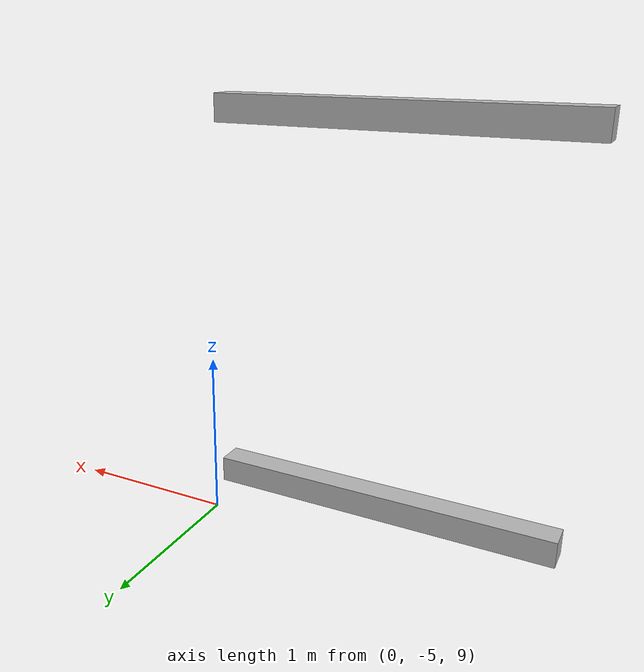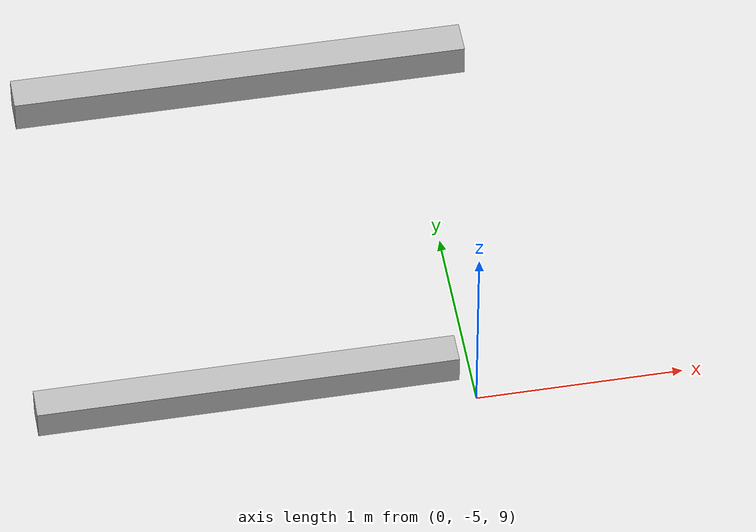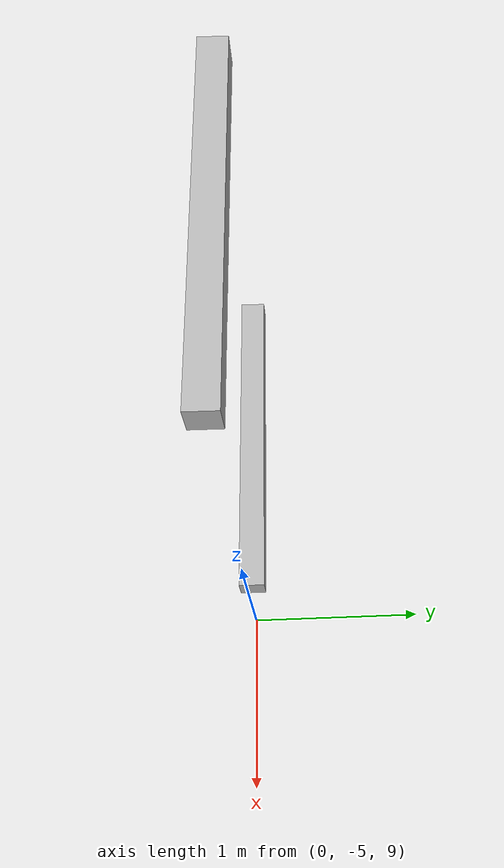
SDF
<sdf version="1.7">
 <world name="default">
  <model name="orthogonal_747_2.000.15_TS">
   <static>1</static>
   <link name="x_link_5_0_2">
    <inertial>
     <mass>1</mass>
     <inertia>
      <ixx>0.166667</ixx>
      <ixy>0</ixy>
      <ixz>0</ixz>
      <iyy>0.166667</iyy>
      <iyz>0</iyz>
      <izz>0.166667</izz>
     </inertia>
    </inertial>
    <pose>5.375 0 11.825 0 -0 0</pose>
    <visual name="visual_0">
     <laser_retro>4418</laser_retro>
     <geometry><box><size>2 1e-06 0.15</size></box></geometry>
     <material>
      <script><name>Gazebo/Grey</name><uri>file://media/materials/scripts/gazebo.material</uri></script>
      <shader type="pixel"><normal_map>__default__</normal_map></shader>
      <ambient>0.678 0.498 0.659 1</ambient>
      <diffuse>0.7 0.7 0.7 1</diffuse>
      <specular>0.01 0.01 0.01 1</specular>
      <emissive>0 0 0 1</emissive>
     </material>
     <pose>0 -0.075 0 0 -0 0</pose>
     <transparency>1</transparency>
    </visual>
    <visual name="visual_1">
     <laser_retro>4419</laser_retro>
     <geometry><box><size>2 1e-06 0.15</size></box></geometry>
     <material>
      <script><name>Gazebo/Grey</name><uri>file://media/materials/scripts/gazebo.material</uri></script>
      <shader type="pixel"><normal_map>__default__</normal_map></shader>
      <ambient>0.447 0.624 0.812 1</ambient>
      <diffuse>0.7 0.7 0.7 1</diffuse>
      <specular>0.01 0.01 0.01 1</specular>
      <emissive>0 0 0 1</emissive>
     </material>
     <pose>0 0.075 0 0 -0 0</pose>
     <transparency>1</transparency>
    </visual>
    <visual name="visual_2">
     <laser_retro>4420</laser_retro>
     <geometry><box><size>2 0.15 1e-06</size></box></geometry>
     <material>
      <script><name>Gazebo/Grey</name><uri>file://media/materials/scripts/gazebo.material</uri></script>
      <shader type="pixel"><normal_map>__default__</normal_map></shader>
      <ambient>0.988 0.686 0.243 1</ambient>
      <diffuse>0.7 0.7 0.7 1</diffuse>
      <specular>0.01 0.01 0.01 1</specular>
      <emissive>0 0 0 1</emissive>
     </material>
     <pose>0 0 -0.075 0 -0 0</pose>
     <transparency>1</transparency>
    </visual>
    <visual name="visual_3">
     <laser_retro>4421</laser_retro>
     <geometry><box><size>1e-06 0.15 0.15</size></box></geometry>
     <material>
      <script><name>Gazebo/Grey</name><uri>file://media/materials/scripts/gazebo.material</uri></script>
      <shader type="pixel"><normal_map>__default__</normal_map></shader>
      <ambient>0.988 0.914 0.31 1</ambient>
      <diffuse>0.7 0.7 0.7 1</diffuse>
      <specular>0.01 0.01 0.01 1</specular>
      <emissive>0 0 0 1</emissive>
     </material>
     <pose>1 0 0 0 -0 0</pose>
     <transparency>1</transparency>
    </visual>
    <visual name="visual_4">
     <laser_retro>4422</laser_retro>
     <geometry><box><size>2 0.15 1e-06</size></box></geometry>
     <material>
      <script><name>Gazebo/Grey</name><uri>file://media/materials/scripts/gazebo.material</uri></script>
      <shader type="pixel"><normal_map>__default__</normal_map></shader>
      <ambient>0.937 0.161 0.161 1</ambient>
      <diffuse>0.7 0.7 0.7 1</diffuse>
      <specular>0.01 0.01 0.01 1</specular>
      <emissive>0 0 0 1</emissive>
     </material>
     <pose>0 0 0.075 0 -0 0</pose>
     <transparency>1</transparency>
    </visual>
    <visual name="visual_5">
     <laser_retro>4423</laser_retro>
     <geometry><box><size>1e-06 0.15 0.15</size></box></geometry>
     <material>
      <script><name>Gazebo/Grey</name><uri>file://media/materials/scripts/gazebo.material</uri></script>
      <shader type="pixel"><normal_map>__default__</normal_map></shader>
      <ambient>0.541 0.886 0.204 1</ambient>
      <diffuse>0.7 0.7 0.7 1</diffuse>
      <specular>0.01 0.01 0.01 1</specular>
      <emissive>0 0 0 1</emissive>
     </material>
     <pose>-1 0 0 0 -0 0</pose>
     <transparency>1</transparency>
    </visual>
    <visual name="visual_texture">
     <geometry><box><size>1.9998 0.149985 0.149985</size></box></geometry>
     <material>
      <script>
       <uri>model://BASE_MODELS/simple_block_v2_textured/materials/scripts</uri>
       <uri>model://BASE_MODELS/simple_block_v2_textured/materials/textures</uri>
       <name>metal</name>
      </script>
     </material>
     <laser_retro>4424</laser_retro>
    </visual>
    <collision name="collision">
     <geometry><box><size>2 0.15 0.15</size></box></geometry>
     <surface>
      <friction>
       <ode><mu>1</mu><mu2>1</mu2><fdir1>0 0 0</fdir1><slip1>0</slip1><slip2>0</slip2></ode>
       <torsional>
        <coefficient>1</coefficient>
        <patch_radius>0</patch_radius>
        <surface_radius>0</surface_radius>
        <use_patch_radius>1</use_patch_radius>
        <ode><slip>0</slip></ode>
       </torsional>
      </friction>
      <bounce><restitution_coefficient>0</restitution_coefficient><threshold>1e+06</threshold></bounce>
      <contact>
       <collide_without_contact>0</collide_without_contact>
       <collide_without_contact_bitmask>1</collide_without_contact_bitmask>
       <collide_bitmask>1</collide_bitmask>
       <ode>
        <soft_cfm>0</soft_cfm>
        <soft_erp>0.2</soft_erp>
        <kp>1e+13</kp>
        <kd>1</kd>
        <max_vel>0.01</max_vel>
        <min_depth>0</min_depth>
       </ode>
       <bullet>
        <split_impulse>1</split_impulse>
        <split_impulse_penetration_threshold>-0.01</split_impulse_penetration_threshold>
        <soft_cfm>0</soft_cfm>
        <soft_erp>0.2</soft_erp>
        <kp>1e+13</kp>
        <kd>1</kd>
       </bullet>
      </contact>
     </surface>
    </collision>
   </link>
   <link name="x_link_6_0_2">
    <inertial>
     <mass>1</mass>
     <inertia>
      <ixx>0.166667</ixx>
      <ixy>0</ixy>
      <ixz>0</ixz>
      <iyy>0.166667</iyy>
      <iyz>0</iyz>
      <izz>0.166667</izz>
     </inertia>
    </inertial>
    <pose>5.375 0 13.975 0 -0 0</pose>
    <visual name="visual_0">
     <laser_retro>5321</laser_retro>
     <geometry><box><size>2 1e-06 0.15</size></box></geometry>
     <material>
      <script><name>Gazebo/Grey</name><uri>file://media/materials/scripts/gazebo.material</uri></script>
      <shader type="pixel"><normal_map>__default__</normal_map></shader>
      <ambient>0.678 0.498 0.659 1</ambient>
      <diffuse>0.7 0.7 0.7 1</diffuse>
      <specular>0.01 0.01 0.01 1</specular>
      <emissive>0 0 0 1</emissive>
     </material>
     <pose>0 -0.075 0 0 -0 0</pose>
     <transparency>1</transparency>
    </visual>
    <visual name="visual_1">
     <laser_retro>5322</laser_retro>
     <geometry><box><size>2 1e-06 0.15</size></box></geometry>
     <material>
      <script><name>Gazebo/Grey</name><uri>file://media/materials/scripts/gazebo.material</uri></script>
      <shader type="pixel"><normal_map>__default__</normal_map></shader>
      <ambient>0.447 0.624 0.812 1</ambient>
      <diffuse>0.7 0.7 0.7 1</diffuse>
      <specular>0.01 0.01 0.01 1</specular>
      <emissive>0 0 0 1</emissive>
     </material>
     <pose>0 0.075 0 0 -0 0</pose>
     <transparency>1</transparency>
    </visual>
    <visual name="visual_2">
     <laser_retro>5323</laser_retro>
     <geometry><box><size>2 0.15 1e-06</size></box></geometry>
     <material>
      <script><name>Gazebo/Grey</name><uri>file://media/materials/scripts/gazebo.material</uri></script>
      <shader type="pixel"><normal_map>__default__</normal_map></shader>
      <ambient>0.988 0.686 0.243 1</ambient>
      <diffuse>0.7 0.7 0.7 1</diffuse>
      <specular>0.01 0.01 0.01 1</specular>
      <emissive>0 0 0 1</emissive>
     </material>
     <pose>0 0 -0.075 0 -0 0</pose>
     <transparency>1</transparency>
    </visual>
    <visual name="visual_3">
     <laser_retro>5324</laser_retro>
     <geometry><box><size>1e-06 0.15 0.15</size></box></geometry>
     <material>
      <script><name>Gazebo/Grey</name><uri>file://media/materials/scripts/gazebo.material</uri></script>
      <shader type="pixel"><normal_map>__default__</normal_map></shader>
      <ambient>0.988 0.914 0.31 1</ambient>
      <diffuse>0.7 0.7 0.7 1</diffuse>
      <specular>0.01 0.01 0.01 1</specular>
      <emissive>0 0 0 1</emissive>
     </material>
     <pose>1 0 0 0 -0 0</pose>
     <transparency>1</transparency>
    </visual>
    <visual name="visual_4">
     <laser_retro>5325</laser_retro>
     <geometry><box><size>2 0.15 1e-06</size></box></geometry>
     <material>
      <script><name>Gazebo/Grey</name><uri>file://media/materials/scripts/gazebo.material</uri></script>
      <shader type="pixel"><normal_map>__default__</normal_map></shader>
      <ambient>0.937 0.161 0.161 1</ambient>
      <diffuse>0.7 0.7 0.7 1</diffuse>
      <specular>0.01 0.01 0.01 1</specular>
      <emissive>0 0 0 1</emissive>
     </material>
     <pose>0 0 0.075 0 -0 0</pose>
     <transparency>1</transparency>
    </visual>
    <visual name="visual_5">
     <laser_retro>5326</laser_retro>
     <geometry><box><size>1e-06 0.15 0.15</size></box></geometry>
     <material>
      <script><name>Gazebo/Grey</name><uri>file://media/materials/scripts/gazebo.material</uri></script>
      <shader type="pixel"><normal_map>__default__</normal_map></shader>
      <ambient>0.541 0.886 0.204 1</ambient>
      <diffuse>0.7 0.7 0.7 1</diffuse>
      <specular>0.01 0.01 0.01 1</specular>
      <emissive>0 0 0 1</emissive>
     </material>
     <pose>-1 0 0 0 -0 0</pose>
     <transparency>1</transparency>
    </visual>
    <visual name="visual_texture">
     <geometry><box><size>1.9998 0.149985 0.149985</size></box></geometry>
     <material>
      <script>
       <uri>model://BASE_MODELS/simple_block_v2_textured/materials/scripts</uri>
       <uri>model://BASE_MODELS/simple_block_v2_textured/materials/textures</uri>
       <name>metal</name>
      </script>
     </material>
     <laser_retro>5327</laser_retro>
    </visual>
    <collision name="collision">
     <geometry><box><size>2 0.15 0.15</size></box></geometry>
     <surface>
      <friction>
       <ode><mu>1</mu><mu2>1</mu2><fdir1>0 0 0</fdir1><slip1>0</slip1><slip2>0</slip2></ode>
       <torsional>
        <coefficient>1</coefficient>
        <patch_radius>0</patch_radius>
        <surface_radius>0</surface_radius>
        <use_patch_radius>1</use_patch_radius>
        <ode><slip>0</slip></ode>
       </torsional>
      </friction>
      <bounce><restitution_coefficient>0</restitution_coefficient><threshold>1e+06</threshold></bounce>
      <contact>
       <collide_without_contact>0</collide_without_contact>
       <collide_without_contact_bitmask>1</collide_without_contact_bitmask>
       <collide_bitmask>1</collide_bitmask>
       <ode>
        <soft_cfm>0</soft_cfm>
        <soft_erp>0.2</soft_erp>
        <kp>1e+13</kp>
        <kd>1</kd>
        <max_vel>0.01</max_vel>
        <min_depth>0</min_depth>
       </ode>
       <bullet>
        <split_impulse>1</split_impulse>
        <split_impulse_penetration_threshold>-0.01</split_impulse_penetration_threshold>
        <soft_cfm>0</soft_cfm>
        <soft_erp>0.2</soft_erp>
        <kp>1e+13</kp>
        <kd>1</kd>
       </bullet>
      </contact>
     </surface>
    </collision>
   </link>
   <pose>-6.47624 -5 -2.5 0 -0 0</pose>
  </model>
 </world>
</sdf>
